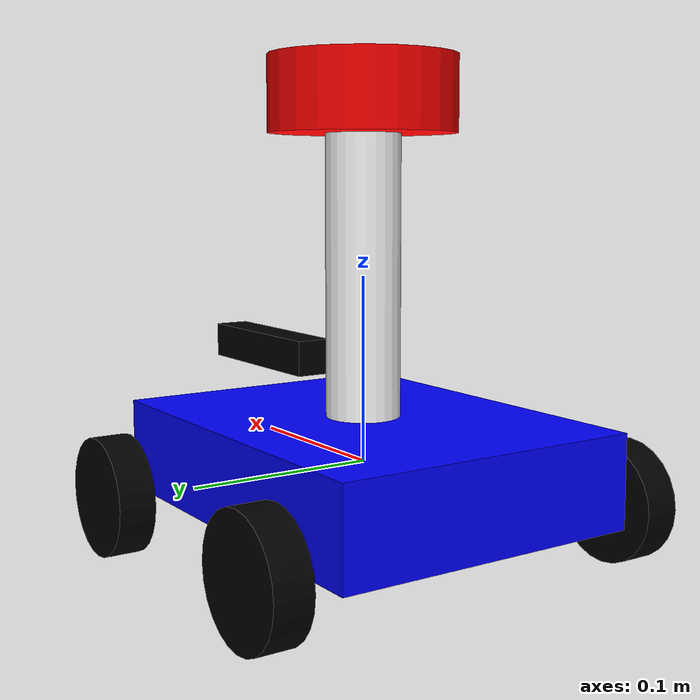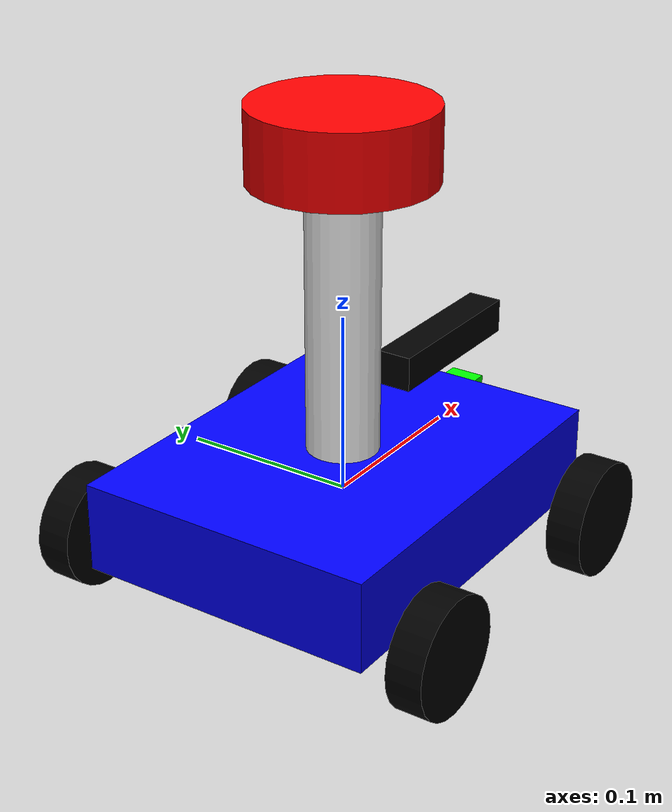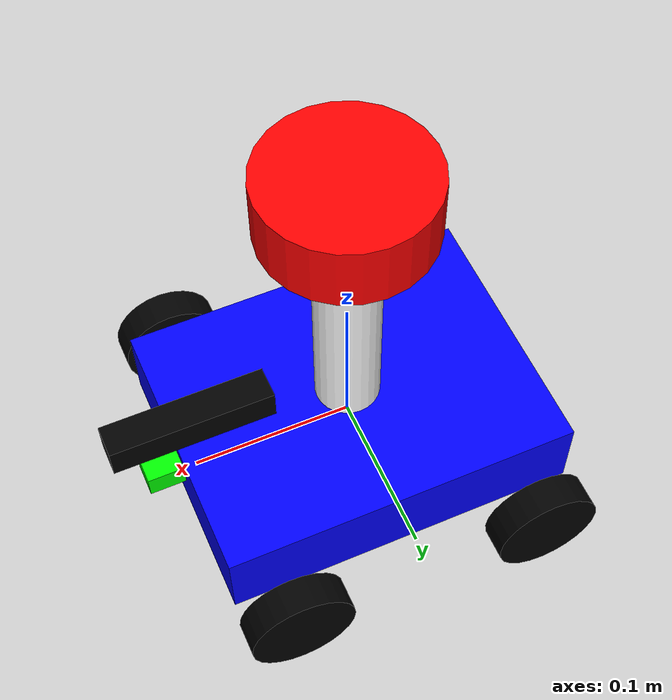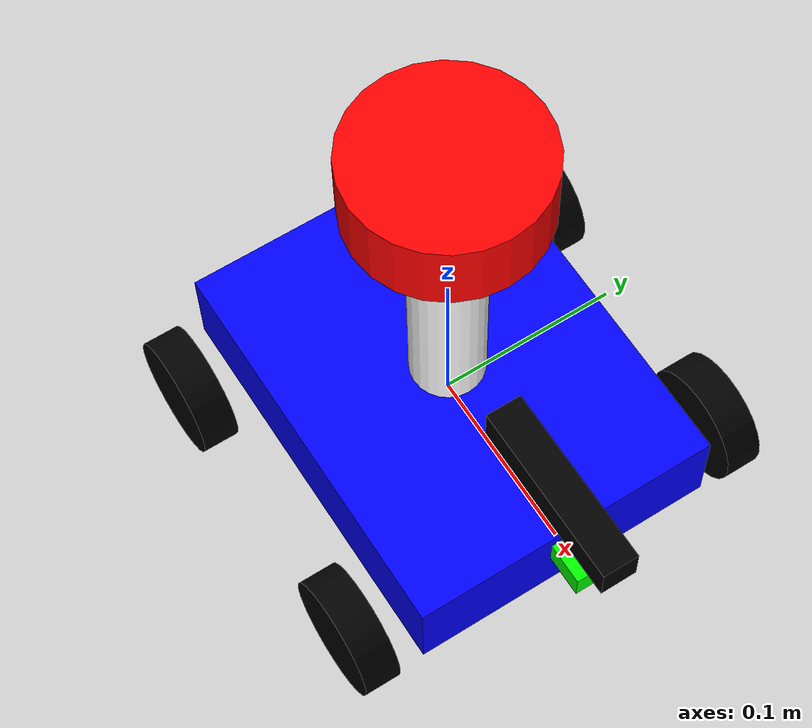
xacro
<?xml version="1.0"?>
<robot xmlns:xacro="http://www.ros.org/wiki/xacro" name="tortoisebot">

  <!-- Definir propriedades -->
  <xacro:property name="base_width" value="0.17"/>
  <xacro:property name="base_length" value="0.22"/>
  <xacro:property name="base_height" value="0.05"/>

  <xacro:property name="wheel_radius" value="0.0325"/>
  <xacro:property name="wheel_width" value="0.02"/>
  <xacro:property name="wheel_ygap" value="0.025"/>
  <xacro:property name="wheel_zoff" value="0.02"/>
  <xacro:property name="wheel_xoff" value="0.08"/>

  <!-- Incluir macros de sensores -->
  <xacro:include filename="$(find tortoisebot_description)/urdf/sensors.xacro"/>
  <xacro:include filename="$(find tortoisebot_description)/urdf/materials.xacro"/>

  <!-- Link base -->
  <link name="base_link">
    <visual>
      <origin xyz="0 0 0" rpy="0 0 0"/>
      <geometry>
        <box size="${base_length} ${base_width} ${base_height}"/>
      </geometry>
      <material name="blue"/>
    </visual>

    <collision>
      <origin xyz="0 0 0" rpy="0 0 0"/>
      <geometry>
        <box size="${base_length} ${base_width} ${base_height}"/>
      </geometry>
    </collision>

    <inertial>
      <origin xyz="0 0 0" rpy="0 0 0"/>
      <mass value="2.5"/>
      <inertia
        ixx="0.0395416666667" ixy="0" ixz="0"
        iyy="0.106208333333" iyz="0"
        izz="0.106208333333"/>
    </inertial>
  </link>

  <!-- Rodas -->
  <xacro:macro name="wheel" params="prefix x_reflect y_reflect">
    <link name="${prefix}_wheel">
      <visual>
        <origin xyz="0 0 0" rpy="${pi/2} 0 0"/>
        <geometry>
          <cylinder radius="${wheel_radius}" length="${wheel_width}"/>
        </geometry>
        <material name="black"/>
      </visual>

      <collision>
        <origin xyz="0 0 0" rpy="${pi/2} 0 0"/>
        <geometry>
          <cylinder radius="${wheel_radius}" length="${wheel_width}"/>
        </geometry>
      </collision>

      <inertial>
        <origin xyz="0 0 0" rpy="0 0 0"/>
        <mass value="0.3"/>
        <inertia
          ixx="0.00032" ixy="0" ixz="0"
          iyy="0.00032" iyz="0"
          izz="0.00063"/>
      </inertial>
    </link>

    <joint name="${prefix}_wheel_joint" type="continuous">
      <parent link="base_link"/>
      <child link="${prefix}_wheel"/>
      <origin xyz="${x_reflect*wheel_xoff} ${y_reflect*(base_width/2+wheel_ygap)} ${-wheel_zoff}" rpy="0 0 0"/>
      <axis xyz="0 1 0"/>
    </joint>
  </xacro:macro>

  <!-- Instanciar as 4 rodas -->
  <xacro:wheel prefix="front_left" x_reflect="1" y_reflect="1"/>
  <xacro:wheel prefix="front_right" x_reflect="1" y_reflect="-1"/>
  <xacro:wheel prefix="rear_left" x_reflect="-1" y_reflect="1"/>
  <xacro:wheel prefix="rear_right" x_reflect="-1" y_reflect="-1"/>

  <!-- Suporte do LiDAR -->
  <link name="lidar_support">
    <visual>
      <origin xyz="0 0 0" rpy="0 0 0"/>
      <geometry>
        <cylinder radius="0.02" length="0.15"/>
      </geometry>
      <material name="white"/>
    </visual>

    <collision>
      <origin xyz="0 0 0" rpy="0 0 0"/>
      <geometry>
        <cylinder radius="0.02" length="0.15"/>
      </geometry>
    </collision>

    <inertial>
      <origin xyz="0 0 0" rpy="0 0 0"/>
      <mass value="0.1"/>
      <inertia
        ixx="0.000188" ixy="0" ixz="0"
        iyy="0.000188" iyz="0"
        izz="0.00004"/>
    </inertial>
  </link>

  <joint name="lidar_support_joint" type="fixed">
    <parent link="base_link"/>
    <child link="lidar_support"/>
    <origin xyz="0 0 ${base_height/2 + 0.075}" rpy="0 0 0"/>
  </joint>

  <!-- LiDAR Frame -->
  <link name="laser_frame">
    <visual>
      <origin xyz="0 0 0" rpy="0 0 0"/>
      <geometry>
        <cylinder radius="0.05" length="0.04"/>
      </geometry>
      <material name="red"/>
    </visual>

    <collision>
      <origin xyz="0 0 0" rpy="0 0 0"/>
      <geometry>
        <cylinder radius="0.05" length="0.04"/>
      </geometry>
    </collision>

    <inertial>
      <origin xyz="0 0 0" rpy="0 0 0"/>
      <mass value="0.15"/>
      <inertia
        ixx="0.000375" ixy="0" ixz="0"
        iyy="0.000375" iyz="0"
        izz="0.000375"/>
    </inertial>
  </link>

  <joint name="laser_joint" type="fixed">
    <parent link="lidar_support"/>
    <child link="laser_frame"/>
    <origin xyz="0 0 ${0.075 + 0.02}" rpy="0 0 0"/>
  </joint>

  <!-- Incluir sensores -->
  <xacro:rplidar_a1m8 parent="laser_frame"/>
  <xacro:ultrasonic_hc_sr04 parent="base_link" prefix="front"/>
  <xacro:webcam_lenovo parent="base_link"/>

  <!-- Plugin Gazebo para movimento diferencial -->
  <gazebo>
    <plugin name="differential_drive_controller" filename="libgazebo_ros_diff_drive.so">
      <update_rate>30</update_rate>
      <left_joint>rear_left_wheel_joint</left_joint>
      <right_joint>rear_right_wheel_joint</right_joint>
      <wheel_separation>${base_width+2*wheel_ygap}</wheel_separation>
      <wheel_diameter>${2*wheel_radius}</wheel_diameter>
      <max_wheel_torque>20</max_wheel_torque>
      <max_wheel_acceleration>1.0</max_wheel_acceleration>
      <command_topic>cmd_vel</command_topic>
      <publish_odom>true</publish_odom>
      <publish_odom_tf>true</publish_odom_tf>
      <publish_wheel_tf>true</publish_wheel_tf>
      <odometry_topic>odom</odometry_topic>
      <odometry_frame>odom</odometry_frame>
      <robot_base_frame>base_link</robot_base_frame>
    </plugin>
  </gazebo>

</robot>

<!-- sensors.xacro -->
<robot xmlns:xacro="http://www.ros.org/wiki/xacro">

  <!-- Macro para RPLiDAR A1M8 -->
  <xacro:macro name="rplidar_a1m8" params="parent">
    <gazebo reference="laser_frame">
      <sensor type="ray" name="rplidar_a1m8">
        <pose>0 0 0 0 0 0</pose>
        <visualize>true</visualize>
        <update_rate>10</update_rate>
        <ray>
          <scan>
            <horizontal>
              <samples>360</samples>
              <resolution>1</resolution>
              <min_angle>-3.14159</min_angle>
              <max_angle>3.14159</max_angle>
            </horizontal>
          </scan>
          <range>
            <min>0.15</min>
            <max>12.0</max>
            <resolution>0.01</resolution>
          </range>
          <noise>
            <type>gaussian</type>
            <mean>0.0</mean>
            <stddev>0.01</stddev>
          </noise>
        </ray>
        <plugin name="gazebo_ros_laser" filename="libgazebo_ros_ray_sensor.so">
          <ros>
            <namespace></namespace>
            <remapping>~/out:=scan</remapping>
          </ros>
          <output_type>sensor_msgs/LaserScan</output_type>
          <frame_name>laser_frame</frame_name>
        </plugin>
      </sensor>
    </gazebo>
  </xacro:macro>

  <!-- Macro para Sensor Ultrassônico HC-SR04 -->
  <xacro:macro name="ultrasonic_hc_sr04" params="parent prefix">
    <link name="${prefix}_ultrasonic_link">
      <visual>
        <origin xyz="0 0 0" rpy="0 0 0"/>
        <geometry>
          <box size="0.045 0.02 0.015"/>
        </geometry>
        <material name="green"/>
      </visual>

      <collision>
        <origin xyz="0 0 0" rpy="0 0 0"/>
        <geometry>
          <box size="0.045 0.02 0.015"/>
        </geometry>
      </collision>

      <inertial>
        <origin xyz="0 0 0" rpy="0 0 0"/>
        <mass value="0.01"/>
        <inertia
          ixx="0.000001" ixy="0" ixz="0"
          iyy="0.000001" iyz="0"
          izz="0.000001"/>
      </inertial>
    </link>

    <joint name="${prefix}_ultrasonic_joint" type="fixed">
      <parent link="${parent}"/>
      <child link="${prefix}_ultrasonic_link"/>
      <origin xyz="0.11 0 0.01" rpy="0 0 0"/>
    </joint>

    <gazebo reference="${prefix}_ultrasonic_link">
      <sensor type="ray" name="${prefix}_ultrasonic">
        <pose>0 0 0 0 0 0</pose>
        <visualize>false</visualize>
        <update_rate>5</update_rate>
        <ray>
          <scan>
            <horizontal>
              <samples>5</samples>
              <resolution>1.0</resolution>
              <min_angle>-0.2618</min_angle>
              <max_angle>0.2618</max_angle>
            </horizontal>
          </scan>
          <range>
            <min>0.02</min>
            <max>4.0</max>
            <resolution>0.01</resolution>
          </range>
          <noise>
            <type>gaussian</type>
            <mean>0.0</mean>
            <stddev>0.005</stddev>
          </noise>
        </ray>
        <plugin name="gazebo_ros_laser" filename="libgazebo_ros_ray_sensor.so">
          <ros>
            <namespace></namespace>
            <remapping>~/out:=${prefix}_ultrasonic/scan</remapping>
          </ros>
          <output_type>sensor_msgs/LaserScan</output_type>
          <frame_name>${prefix}_ultrasonic_link</frame_name>
        </plugin>
      </sensor>
      <material>Gazebo/Green</material>
    </gazebo>
  </xacro:macro>

  <!-- Macro para Webcam Lenovo 300 -->
  <xacro:macro name="webcam_lenovo" params="parent">
    <link name="camera_link">
      <visual>
        <origin xyz="0 0 0" rpy="0 0 0"/>
        <geometry>
          <box size="0.1 0.02 0.02"/>
        </geometry>
        <material name="black"/>
      </visual>

      <collision>
        <origin xyz="0 0 0" rpy="0 0 0"/>
        <geometry>
          <box size="0.1 0.02 0.02"/>
        </geometry>
      </collision>

      <inertial>
        <origin xyz="0 0 0" rpy="0 0 0"/>
        <mass value="0.05"/>
        <inertia
          ixx="0.000001" ixy="0" ixz="0"
          iyy="0.000001" iyz="0"
          izz="0.000001"/>
      </inertial>
    </link>

    <joint name="camera_joint" type="fixed">
      <parent link="${parent}"/>
      <child link="camera_link"/>
      <origin xyz="0.1 0 0.05" rpy="0 0 0"/>
    </joint>

    <!-- Frame óptico da câmera -->
    <link name="camera_optical_frame"/>

    <joint name="camera_optical_joint" type="fixed">
      <parent link="camera_link"/>
      <child link="camera_optical_frame"/>
      <origin xyz="0 0 0" rpy="-1.5708 0 -1.5708"/>
    </joint>

    <gazebo reference="camera_link">
      <sensor type="camera" name="camera_sensor">
        <update_rate>30.0</update_rate>
        <camera name="lenovo_camera">
          <horizontal_fov>1.3962634</horizontal_fov>
          <image>
            <width>1920</width>
            <height>1080</height>
            <format>R8G8B8</format>
          </image>
          <clip>
            <near>0.02</near>
            <far>300</far>
          </clip>
          <noise>
            <type>gaussian</type>
            <mean>0.0</mean>
            <stddev>0.007</stddev>
          </noise>
        </camera>
        <plugin name="camera_controller" filename="libgazebo_ros_camera.so">
          <ros>
            <namespace></namespace>
            <remapping>image_raw:=camera/image_raw</remapping>
            <remapping>camera_info:=camera/camera_info</remapping>
          </ros>
          <camera_name>lenovo_camera</camera_name>
          <frame_name>camera_optical_frame</frame_name>
          <hack_baseline>0.07</hack_baseline>
        </plugin>
      </sensor>
      <material>Gazebo/Black</material>
    </gazebo>
  </xacro:macro>

</robot>

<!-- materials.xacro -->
<robot xmlns:xacro="http://www.ros.org/wiki/xacro">

  <!-- Definição de materiais para Gazebo e RViz -->

  <material name="blue">
    <color rgba="0.0 0.0 1.0 1.0"/>
  </material>

  <material name="black">
    <color rgba="0.0 0.0 0.0 1.0"/>
  </material>

  <material name="white">
    <color rgba="1.0 1.0 1.0 1.0"/>
  </material>

  <material name="red">
    <color rgba="1.0 0.0 0.0 1.0"/>
  </material>

  <material name="green">
    <color rgba="0.0 1.0 0.0 1.0"/>
  </material>

  <material name="yellow">
    <color rgba="1.0 1.0 0.0 1.0"/>
  </material>

  <material name="orange">
    <color rgba="1.0 0.5 0.0 1.0"/>
  </material>

  <!-- Propriedades dos materiais para Gazebo -->
  <gazebo reference="base_link">
    <material>Gazebo/Blue</material>
  </gazebo>

  <gazebo reference="front_left_wheel">
    <material>Gazebo/Black</material>
  </gazebo>

  <gazebo reference="front_right_wheel">
    <material>Gazebo/Black</material>
  </gazebo>

  <gazebo reference="rear_left_wheel">
    <material>Gazebo/Black</material>
  </gazebo>

  <gazebo reference="rear_right_wheel">
    <material>Gazebo/Black</material>
  </gazebo>

  <gazebo reference="lidar_support">
    <material>Gazebo/White</material>
  </gazebo>

  <gazebo reference="laser_frame">
    <material>Gazebo/Red</material>
  </gazebo>

</robot>
